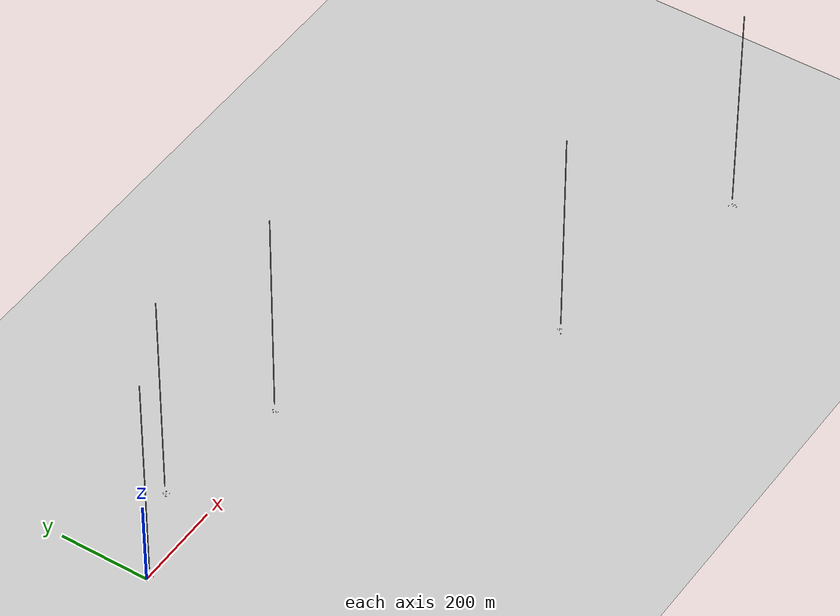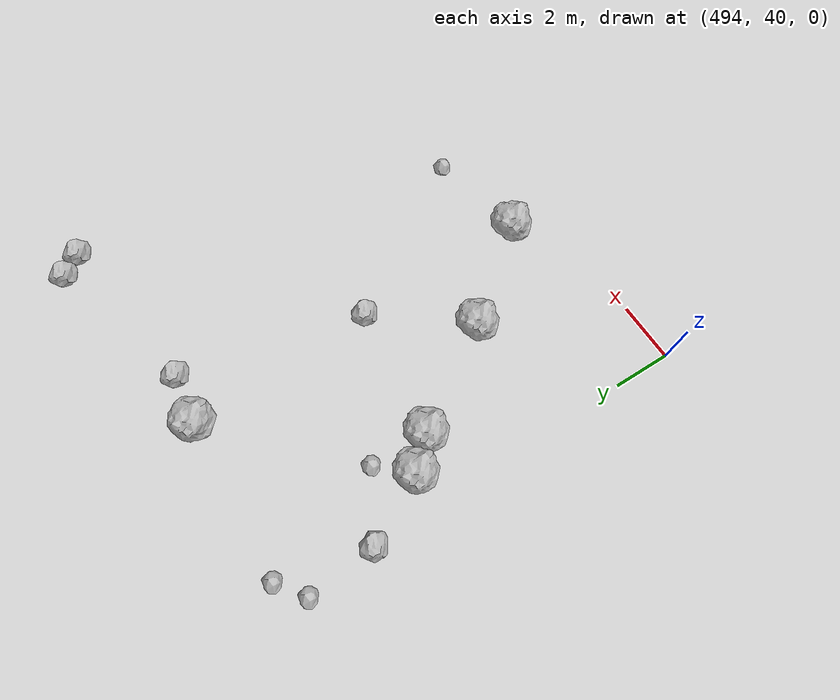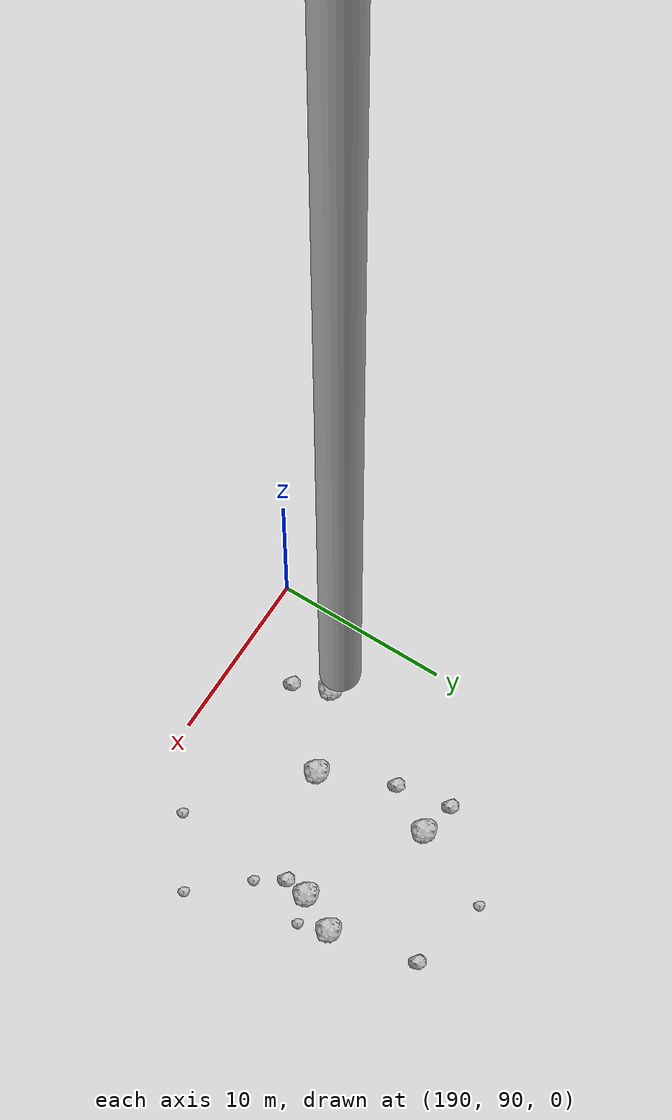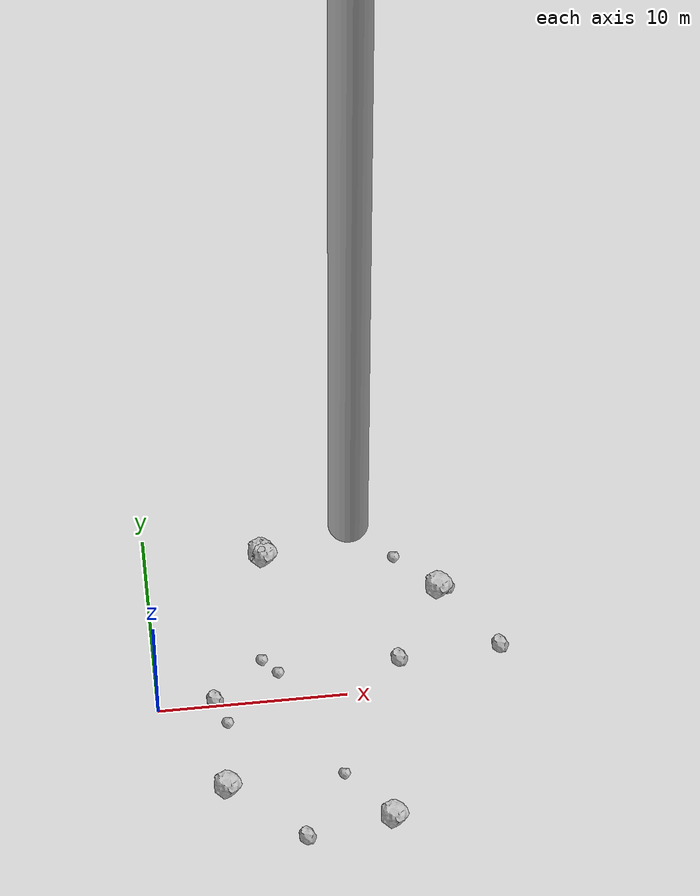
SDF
<?xml version="1.0" ?>
<sdf version="1.6">
  <world name="default">

    <include>
      <uri>model://custom_ground</uri>
    </include>

    <include>
      <uri>model://sun</uri>
    </include>

    <spherical_coordinates>
      <surface_model>EARTH_WGS84</surface_model>
      <latitude_deg>38.161479</latitude_deg>
      <longitude_deg>-122.454630</longitude_deg>
      <elevation>488.0</elevation>
      <heading_deg>90</heading_deg>
    </spherical_coordinates>

    <model name="rock1_0_0">
      <include>
        <uri>model://rock1</uri>
        <pose>6.308458324474515 8.612555637342272 0.5 0 0 0</pose>
      </include>
    </model>
    <model name="rock1_0_1">
      <include>
        <uri>model://rock1</uri>
        <pose>6.396096057530551 8.479239310854343 0.5 0 0 0</pose>
      </include>
    </model>
    <model name="rock1_0_2">
      <include>
        <uri>model://rock1</uri>
        <pose>3.261754044280587 -4.769910201781062 0.5 0 0 0</pose>
      </include>
    </model>
    <model name="rock1_0_3">
      <include>
        <uri>model://rock1</uri>
        <pose>15.520429702402797 5.693422537610807 0.5 0 0 0</pose>
      </include>
    </model>
    <model name="rock1_0_4">
      <include>
        <uri>model://rock1</uri>
        <pose>11.777312439147181 -7.3093075785236135 0.5 0 0 0</pose>
      </include>
    </model>
    <model name="rock2_0_0">
      <include>
        <uri>model://rock2</uri>
        <pose>7.125235849843712 -7.97079826790487 0.3 0 0 0</pose>
      </include>
    </model>
    <model name="rock2_0_1">
      <include>
        <uri>model://rock2</uri>
        <pose>12.967498295084798 1.775055955145131 0.3 0 0 0</pose>
      </include>
    </model>
    <model name="rock2_0_2">
      <include>
        <uri>model://rock2</uri>
        <pose>3.0329689439528784 0.31152642275421094 0.3 0 0 0</pose>
      </include>
    </model>
    <model name="rock2_0_3">
      <include>
        <uri>model://rock2</uri>
        <pose>18.366165792159 2.044908350928374 0.3 0 0 0</pose>
      </include>
    </model>
    <model name="rock2_0_4">
      <include>
        <uri>model://rock2</uri>
        <pose>15.894855846311472 5.773538055228343 0.3 0 0 0</pose>
      </include>
    </model>
    <model name="rock3_0_0">
      <include>
        <uri>model://rock3</uri>
        <pose>5.703495189242314 2.358000272930912 0.2 0 0 0</pose>
      </include>
    </model>
    <model name="rock3_0_1">
      <include>
        <uri>model://rock3</uri>
        <pose>6.49559998121914 1.542524239486589 0.2 0 0 0</pose>
      </include>
    </model>
    <model name="rock3_0_2">
      <include>
        <uri>model://rock3</uri>
        <pose>13.274647776970745 7.715730963763427 0.2 0 0 0</pose>
      </include>
    </model>
    <model name="rock3_0_3">
      <include>
        <uri>model://rock3</uri>
        <pose>9.408411960963754 -4.614974823708364 0.2 0 0 0</pose>
      </include>
    </model>
    <model name="rock3_0_4">
      <include>
        <uri>model://rock3</uri>
        <pose>3.5759084363229543 -1.1033952716996396 0.2 0 0 0</pose>
      </include>
    </model>
    <model name="rock1_1_0">
      <include>
        <uri>model://rock1</uri>
        <pose>198.42680907312328 104.33635764026242 0.5 0 0 0</pose>
      </include>
    </model>
    <model name="rock1_1_1">
      <include>
        <uri>model://rock1</uri>
        <pose>194.06532369650057 95.51737219287934 0.5 0 0 0</pose>
      </include>
    </model>
    <model name="rock1_1_2">
      <include>
        <uri>model://rock1</uri>
        <pose>198.65965831157885 97.53388466567263 0.5 0 0 0</pose>
      </include>
    </model>
    <model name="rock1_1_3">
      <include>
        <uri>model://rock1</uri>
        <pose>204.9319967530829 100.88750886614193 0.5 0 0 0</pose>
      </include>
    </model>
    <model name="rock1_1_4">
      <include>
        <uri>model://rock1</uri>
        <pose>205.9682097170541 103.00787843271864 0.5 0 0 0</pose>
      </include>
    </model>
    <model name="rock2_1_0">
      <include>
        <uri>model://rock2</uri>
        <pose>194.87597487194176 93.5245229364635 0.3 0 0 0</pose>
      </include>
    </model>
    <model name="rock2_1_1">
      <include>
        <uri>model://rock2</uri>
        <pose>204.82667821086335 107.97846489483175 0.3 0 0 0</pose>
      </include>
    </model>
    <model name="rock2_1_2">
      <include>
        <uri>model://rock2</uri>
        <pose>204.70309244537125 99.54864169466191 0.3 0 0 0</pose>
      </include>
    </model>
    <model name="rock2_1_3">
      <include>
        <uri>model://rock2</uri>
        <pose>196.3362812044581 104.80911241613602 0.3 0 0 0</pose>
      </include>
    </model>
    <model name="rock2_1_4">
      <include>
        <uri>model://rock2</uri>
        <pose>196.86947747057533 101.65878313907764 0.3 0 0 0</pose>
      </include>
    </model>
    <model name="rock3_1_0">
      <include>
        <uri>model://rock3</uri>
        <pose>200.32438183233677 109.06598266329546 0.2 0 0 0</pose>
      </include>
    </model>
    <model name="rock3_1_1">
      <include>
        <uri>model://rock3</uri>
        <pose>206.431229413142 101.34923207781117 0.2 0 0 0</pose>
      </include>
    </model>
    <model name="rock3_1_2">
      <include>
        <uri>model://rock3</uri>
        <pose>204.49475042238745 92.61456965259826 0.2 0 0 0</pose>
      </include>
    </model>
    <model name="rock3_1_3">
      <include>
        <uri>model://rock3</uri>
        <pose>208.22887937909758 95.19002786315937 0.2 0 0 0</pose>
      </include>
    </model>
    <model name="rock3_1_4">
      <include>
        <uri>model://rock3</uri>
        <pose>205.65868111539916 98.02394783165627 0.2 0 0 0</pose>
      </include>
    </model>
    <model name="rock1_2_0">
      <include>
        <uri>model://rock1</uri>
        <pose>498.2005253187674 44.69433459574095 0.5 0 0 0</pose>
      </include>
    </model>
    <model name="rock1_2_1">
      <include>
        <uri>model://rock1</uri>
        <pose>500.089074289262 54.25860577291185 0.5 0 0 0</pose>
      </include>
    </model>
    <model name="rock1_2_2">
      <include>
        <uri>model://rock1</uri>
        <pose>495.0801516649965 49.16350070471063 0.5 0 0 0</pose>
      </include>
    </model>
    <model name="rock1_2_3">
      <include>
        <uri>model://rock1</uri>
        <pose>495.9805178780248 48.191844087892264 0.5 0 0 0</pose>
      </include>
    </model>
    <model name="rock1_2_4">
      <include>
        <uri>model://rock1</uri>
        <pose>500.6649701303077 41.522589415364116 0.5 0 0 0</pose>
      </include>
    </model>
    <model name="rock2_2_0">
      <include>
        <uri>model://rock2</uri>
        <pose>507.5201559427165 54.94360987604315 0.3 0 0 0</pose>
      </include>
    </model>
    <model name="rock2_2_1">
      <include>
        <uri>model://rock2</uri>
        <pose>506.9827796128909 55.67412217035748 0.3 0 0 0</pose>
      </include>
    </model>
    <model name="rock2_2_2">
      <include>
        <uri>model://rock2</uri>
        <pose>500.3949623030159 47.69703748394463 0.3 0 0 0</pose>
      </include>
    </model>
    <model name="rock2_2_3">
      <include>
        <uri>model://rock2</uri>
        <pose>501.75022587445557 54.045011584419754 0.3 0 0 0</pose>
      </include>
    </model>
    <model name="rock2_2_4">
      <include>
        <uri>model://rock2</uri>
        <pose>493.8435686094748 51.4249146588702 0.3 0 0 0</pose>
      </include>
    </model>
    <model name="rock3_2_0">
      <include>
        <uri>model://rock3</uri>
        <pose>503.88901871399867 42.1559236647124 0.2 0 0 0</pose>
      </include>
    </model>
    <model name="rock3_2_1">
      <include>
        <uri>model://rock3</uri>
        <pose>501.0629528036749 41.55950633425494 0.2 0 0 0</pose>
      </include>
    </model>
    <model name="rock3_2_2">
      <include>
        <uri>model://rock3</uri>
        <pose>493.6036413319868 53.76528991099069 0.2 0 0 0</pose>
      </include>
    </model>
    <model name="rock3_2_3">
      <include>
        <uri>model://rock3</uri>
        <pose>494.5133314871317 54.455887738719916 0.2 0 0 0</pose>
      </include>
    </model>
    <model name="rock3_2_4">
      <include>
        <uri>model://rock3</uri>
        <pose>495.9220952258848 50.18467663374137 0.2 0 0 0</pose>
      </include>
    </model>
    <model name="rock1_3_0">
      <include>
        <uri>model://rock1</uri>
        <pose>1005.1059247465108 -299.83916359612056 0.5 0 0 0</pose>
      </include>
    </model>
    <model name="rock1_3_1">
      <include>
        <uri>model://rock1</uri>
        <pose>1003.6458743258986 -296.1439594774774 0.5 0 0 0</pose>
      </include>
    </model>
    <model name="rock1_3_2">
      <include>
        <uri>model://rock1</uri>
        <pose>992.8039236055515 -306.4570783911687 0.5 0 0 0</pose>
      </include>
    </model>
    <model name="rock1_3_3">
      <include>
        <uri>model://rock1</uri>
        <pose>1003.2384705628551 -296.74046156853706 0.5 0 0 0</pose>
      </include>
    </model>
    <model name="rock1_3_4">
      <include>
        <uri>model://rock1</uri>
        <pose>992.8385994139591 -304.37587449301725 0.5 0 0 0</pose>
      </include>
    </model>
    <model name="rock2_3_0">
      <include>
        <uri>model://rock2</uri>
        <pose>999.1162481543765 -297.74467890951814 0.3 0 0 0</pose>
      </include>
    </model>
    <model name="rock2_3_1">
      <include>
        <uri>model://rock2</uri>
        <pose>1004.1325260862694 -296.207496796592 0.3 0 0 0</pose>
      </include>
    </model>
    <model name="rock2_3_2">
      <include>
        <uri>model://rock2</uri>
        <pose>997.0463699371314 -307.8449800949679 0.3 0 0 0</pose>
      </include>
    </model>
    <model name="rock2_3_3">
      <include>
        <uri>model://rock2</uri>
        <pose>998.7015434912058 -308.8383570235455 0.3 0 0 0</pose>
      </include>
    </model>
    <model name="rock2_3_4">
      <include>
        <uri>model://rock2</uri>
        <pose>999.9168726068697 -292.87806345884934 0.3 0 0 0</pose>
      </include>
    </model>
    <model name="rock3_3_0">
      <include>
        <uri>model://rock3</uri>
        <pose>995.4354743598856 -303.41799369685367 0.2 0 0 0</pose>
      </include>
    </model>
    <model name="rock3_3_1">
      <include>
        <uri>model://rock3</uri>
        <pose>999.8772868513216 -290.7142505410128 0.2 0 0 0</pose>
      </include>
    </model>
    <model name="rock3_3_2">
      <include>
        <uri>model://rock3</uri>
        <pose>1007.5933929030165 -296.3594207636505 0.2 0 0 0</pose>
      </include>
    </model>
    <model name="rock3_3_3">
      <include>
        <uri>model://rock3</uri>
        <pose>999.6419845609264 -304.82262562501205 0.2 0 0 0</pose>
      </include>
    </model>
    <model name="rock3_3_4">
      <include>
        <uri>model://rock3</uri>
        <pose>1004.6042577092254 -294.71389355032875 0.2 0 0 0</pose>
      </include>
    </model>
    <model name="rock1_4_0">
      <include>
        <uri>model://rock1</uri>
        <pose>1498.022538487475 -394.2084895358315 0.5 0 0 0</pose>
      </include>
    </model>
    <model name="rock1_4_1">
      <include>
        <uri>model://rock1</uri>
        <pose>1500.6631543533042 -402.81724962503637 0.5 0 0 0</pose>
      </include>
    </model>
    <model name="rock1_4_2">
      <include>
        <uri>model://rock1</uri>
        <pose>1504.1269673664144 -397.4718127065946 0.5 0 0 0</pose>
      </include>
    </model>
    <model name="rock1_4_3">
      <include>
        <uri>model://rock1</uri>
        <pose>1503.6769759946455 -409.22588277151243 0.5 0 0 0</pose>
      </include>
    </model>
    <model name="rock1_4_4">
      <include>
        <uri>model://rock1</uri>
        <pose>1502.2080509586547 -409.4180604631524 0.5 0 0 0</pose>
      </include>
    </model>
    <model name="rock2_4_0">
      <include>
        <uri>model://rock2</uri>
        <pose>1496.092960477272 -392.7459735134412 0.3 0 0 0</pose>
      </include>
    </model>
    <model name="rock2_4_1">
      <include>
        <uri>model://rock2</uri>
        <pose>1495.7392930569874 -394.2746019916951 0.3 0 0 0</pose>
      </include>
    </model>
    <model name="rock2_4_2">
      <include>
        <uri>model://rock2</uri>
        <pose>1506.9734193633217 -398.1310273691531 0.3 0 0 0</pose>
      </include>
    </model>
    <model name="rock2_4_3">
      <include>
        <uri>model://rock2</uri>
        <pose>1506.032408776344 -402.4790205907562 0.3 0 0 0</pose>
      </include>
    </model>
    <model name="rock2_4_4">
      <include>
        <uri>model://rock2</uri>
        <pose>1507.0824867539507 -404.46259022563794 0.3 0 0 0</pose>
      </include>
    </model>
    <model name="rock3_4_0">
      <include>
        <uri>model://rock3</uri>
        <pose>1493.1932971211077 -398.2466231913052 0.2 0 0 0</pose>
      </include>
    </model>
    <model name="rock3_4_1">
      <include>
        <uri>model://rock3</uri>
        <pose>1502.440830168049 -404.2915535943042 0.2 0 0 0</pose>
      </include>
    </model>
    <model name="rock3_4_2">
      <include>
        <uri>model://rock3</uri>
        <pose>1501.242278858272 -407.25696001873587 0.2 0 0 0</pose>
      </include>
    </model>
    <model name="rock3_4_3">
      <include>
        <uri>model://rock3</uri>
        <pose>1491.9706214513424 -395.5758570004444 0.2 0 0 0</pose>
      </include>
    </model>
    <model name="rock3_4_4">
      <include>
        <uri>model://rock3</uri>
        <pose>1506.2947118762743 -407.6392602634419 0.2 0 0 0</pose>
      </include>
    </model>

    <model name="cylinder_1">
      <static>true</static>
      <link name="link">
        <visual name="visual">
          <geometry>
            <cylinder>
              <radius>1</radius>
              <length>500</length>
            </cylinder>
          </geometry>
        </visual>
      </link>
      <pose>10 0 270 0 0 0</pose>
    </model>

    <model name="cylinder_2">
      <static>true</static>
      <link name="link">
        <visual name="visual">
          <geometry>
            <cylinder>
              <radius>1</radius>
              <length>500</length>
            </cylinder>
          </geometry>
        </visual>
      </link>
      <pose>200 100 270 0 0 0</pose>
    </model>

    <model name="cylinder_3">
      <static>true</static>
      <link name="link">
        <visual name="visual">
          <geometry>
            <cylinder>
              <radius>1</radius>
              <length>500</length>
            </cylinder>
          </geometry>
        </visual>
      </link>
      <pose>500 50 270 0 0 0</pose>
    </model>

    <model name="cylinder_4">
      <static>true</static>
      <link name="link">
        <visual name="visual">
          <geometry>
            <cylinder>
              <radius>1</radius>
              <length>500</length>
            </cylinder>
          </geometry>
        </visual>
      </link>
      <pose>1000 -300 270 0 0 0</pose>
    </model>

    <model name="cylinder_5">
      <static>true</static>
      <link name="link">
        <visual name="visual">
          <geometry>
            <cylinder>
              <radius>1</radius>
              <length>500</length>
            </cylinder>
          </geometry>
        </visual>
      </link>
      <pose>1500 -400 270 0 0 0</pose>
    </model>

  </world>
</sdf>

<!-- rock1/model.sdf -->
<sdf version="1.6">
  <model name="rock1">
    <static>true</static> <!-- Set to true if the model should not move -->
    <pose>0 0 0 0 0 0</pose>

    <!--z offset is 0.5 for full scale-->

    <link name="link">
      <collision name="rock1_collision">
        <geometry>
          <mesh>
            <uri>model://meshes/rock1.dae</uri>
          </mesh>
        </geometry>
      </collision>
      <visual name="rock1_visual">
        <geometry>
          <mesh>
            <uri>model://meshes/rock1.dae</uri>
          </mesh>
        </geometry>
        <material>
          <script>
            <uri>model://materials/scripts/sand_pebbles.material</uri>
            <name>custom_ground/Image</name>
          </script>
        </material>
      </visual>
    </link>
  </model>
</sdf>

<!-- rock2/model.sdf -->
<sdf version="1.6">
  <model name="rock2">
    <static>true</static> <!-- Set to true if the model should not move -->
    <pose>0 0 0 0 0 0</pose>

    <!--z offset is 0.3 for full scale-->

    <link name="link">
      <collision name="rock2_collision">
        <geometry>
          <mesh>
            <uri>model://meshes/rock2.dae</uri>
          </mesh>
        </geometry>
      </collision>
      <visual name="rock2_visual">
        <geometry>
          <mesh>
            <uri>model://meshes/rock2.dae</uri>
          </mesh>
        </geometry>
        <material>
          <script>
            <uri>model://materials/scripts/sand_pebbles.material</uri>
            <name>custom_ground/Image</name>
          </script>
        </material>
      </visual>
    </link>
  </model>
</sdf>

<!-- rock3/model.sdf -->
<sdf version="1.6">
  <model name="rock3">
    <static>true</static> <!-- Set to true if the model should not move -->
    <pose>0 0 0 0 0 0</pose>

    <!--z offset is 0.2 for full scale-->

    <link name="link">
      <collision name="rock3_collision">
        <geometry>
          <mesh>
            <uri>model://meshes/rock3.dae</uri>
          </mesh>
        </geometry>
      </collision>
      <visual name="rock3_visual">
        <geometry>
          <mesh>
            <uri>model://meshes/rock3.dae</uri>
          </mesh>
        </geometry>
        <material>
          <script>
            <uri>model://materials/scripts/sand_pebbles.material</uri>
            <name>custom_ground/Image</name>
          </script>
        </material>
      </visual>
    </link>
  </model>
</sdf>

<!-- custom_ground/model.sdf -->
<sdf version="1.6">
  <model name="custom_ground">
    <static>true</static> <!-- Ground is static and immovable -->
    <link name="ground_link">
      <pose>240 0 0 0 0 0</pose> <!-- Position and orientation relative to the world -->
      <!-- Visual Representation -->
      <visual name="ground_visual">
        <geometry>
          <plane>
            <normal>0 0 1</normal> <!-- Upward facing plane -->
            <size>500 500</size> <!-- Size of the plane -->
          </plane>
        </geometry>
        <material>
          <script>
            <uri>model://materials/scripts/sand_pebbles.material</uri>
            <name>custom_ground/Image</name>
          </script>
        </material>
      </visual>

      <!-- Collision Representation -->
      <collision name="ground_collision">
        <geometry>
          <plane>
            <normal>0 0 1</normal>
            <size>100 100</size>
          </plane>
        </geometry>
      </collision>

    </link>
  </model>
</sdf>
